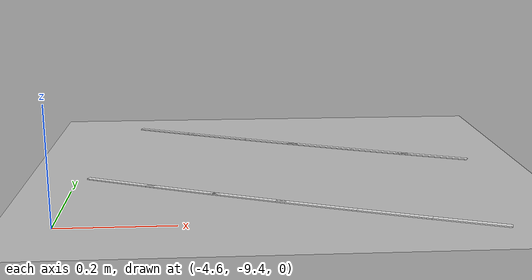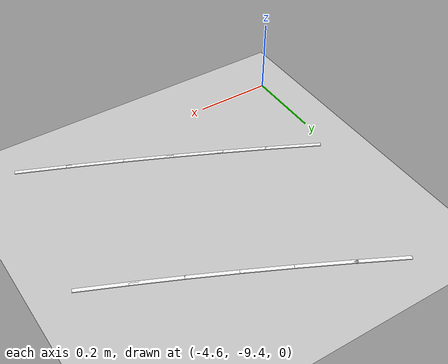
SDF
<sdf version="1.7">
 <world name="default">
  <model name="ground_plane">
   <static>1</static>
   <link name="link">
    <collision name="collision">
     <geometry><plane><normal>0 0 1</normal><size>100 100</size></plane></geometry>
     <surface>
      <contact><collide_bitmask>65535</collide_bitmask></contact>
      <friction><ode><mu>100</mu><mu2>50</mu2></ode></friction>
     </surface>
    </collision>
    <visual name="visual">
     <cast_shadows>0</cast_shadows>
     <geometry><plane><normal>0 0 1</normal><size>100 100</size></plane></geometry>
     <material>
      <script><uri>file://media/materials/scripts/gazebo.material</uri><name>Gazebo/Grey</name></script>
     </material>
    </visual>
   </link>
  </model>
  <model name="lane_line_left_337">
   <static>1</static>
   <link name="link">
    <pose>0 0 -0.004 0 -0 0</pose>
    <visual name="visual">
     <geometry><box><size>0.1457 0.01 0.01</size></box></geometry>
     <material><ambient>1 1 1 1</ambient><diffuse>1 1 1 1</diffuse></material>
    </visual>
    <collision name="collision"><geometry><box><size>0.1457 0.01 0.01</size></box></geometry></collision>
   </link>
   <pose>-4.44902 -8.73169 0 0 0 -0.471239</pose>
  </model>
  <model name="lane_line_left_338">
   <static>1</static>
   <link name="link">
    <pose>0 0 -0.004 0 -0 0</pose>
    <visual name="visual">
     <geometry><box><size>0.1457 0.01 0.01</size></box></geometry>
     <material><ambient>1 1 1 1</ambient><diffuse>1 1 1 1</diffuse></material>
    </visual>
    <collision name="collision"><geometry><box><size>0.1457 0.01 0.01</size></box></geometry></collision>
   </link>
   <pose>-4.33894 -8.78691 0 0 0 -0.458673</pose>
  </model>
  <model name="lane_line_right_338">
   <static>1</static>
   <link name="link">
    <pose>0 0 -0.004 0 -0 0</pose>
    <visual name="visual">
     <geometry><box><size>0.1457 0.01 0.01</size></box></geometry>
     <material><ambient>1 1 1 1</ambient><diffuse>1 1 1 1</diffuse></material>
    </visual>
    <collision name="collision"><geometry><box><size>0.1457 0.01 0.01</size></box></geometry></collision>
   </link>
   <pose>-4.51605 -9.14556 0 0 0 -0.458673</pose>
  </model>
  <model name="lane_line_left_339">
   <static>1</static>
   <link name="link">
    <pose>0 0 -0.004 0 -0 0</pose>
    <visual name="visual">
     <geometry><box><size>0.1457 0.01 0.01</size></box></geometry>
     <material><ambient>1 1 1 1</ambient><diffuse>1 1 1 1</diffuse></material>
    </visual>
    <collision name="collision"><geometry><box><size>0.1457 0.01 0.01</size></box></geometry></collision>
   </link>
   <pose>-4.22818 -8.84073 0 0 0 -0.446106</pose>
  </model>
  <model name="lane_line_right_339">
   <static>1</static>
   <link name="link">
    <pose>0 0 -0.004 0 -0 0</pose>
    <visual name="visual">
     <geometry><box><size>0.1457 0.01 0.01</size></box></geometry>
     <material><ambient>1 1 1 1</ambient><diffuse>1 1 1 1</diffuse></material>
    </visual>
    <collision name="collision"><geometry><box><size>0.1457 0.01 0.01</size></box></geometry></collision>
   </link>
   <pose>-4.40077 -9.20159 0 0 0 -0.446106</pose>
  </model>
  <model name="lane_line_left_340">
   <static>1</static>
   <link name="link">
    <pose>0 0 -0.004 0 -0 0</pose>
    <visual name="visual">
     <geometry><box><size>0.1457 0.01 0.01</size></box></geometry>
     <material><ambient>1 1 1 1</ambient><diffuse>1 1 1 1</diffuse></material>
    </visual>
    <collision name="collision"><geometry><box><size>0.1457 0.01 0.01</size></box></geometry></collision>
   </link>
   <pose>-4.11676 -8.89317 0 0 0 -0.43354</pose>
  </model>
  <model name="lane_line_right_340">
   <static>1</static>
   <link name="link">
    <pose>0 0 -0.004 0 -0 0</pose>
    <visual name="visual">
     <geometry><box><size>0.1457 0.01 0.01</size></box></geometry>
     <material><ambient>1 1 1 1</ambient><diffuse>1 1 1 1</diffuse></material>
    </visual>
    <collision name="collision"><geometry><box><size>0.1457 0.01 0.01</size></box></geometry></collision>
   </link>
   <pose>-4.28479 -9.25616 0 0 0 -0.43354</pose>
  </model>
  <model name="lane_line_left_341">
   <static>1</static>
   <link name="link">
    <pose>0 0 -0.004 0 -0 0</pose>
    <visual name="visual">
     <geometry><box><size>0.1457 0.01 0.01</size></box></geometry>
     <material><ambient>1 1 1 1</ambient><diffuse>1 1 1 1</diffuse></material>
    </visual>
    <collision name="collision"><geometry><box><size>0.1457 0.01 0.01</size></box></geometry></collision>
   </link>
   <pose>-4.00468 -8.9442 0 0 0 -0.420973</pose>
  </model>
  <model name="lane_line_right_341">
   <static>1</static>
   <link name="link">
    <pose>0 0 -0.004 0 -0 0</pose>
    <visual name="visual">
     <geometry><box><size>0.1457 0.01 0.01</size></box></geometry>
     <material><ambient>1 1 1 1</ambient><diffuse>1 1 1 1</diffuse></material>
    </visual>
    <collision name="collision"><geometry><box><size>0.1457 0.01 0.01</size></box></geometry></collision>
   </link>
   <pose>-4.16814 -9.30927 0 0 0 -0.420973</pose>
  </model>
  <model name="lane_line_left_342">
   <static>1</static>
   <link name="link">
    <pose>0 0 -0.004 0 -0 0</pose>
    <visual name="visual">
     <geometry><box><size>0.1457 0.01 0.01</size></box></geometry>
     <material><ambient>1 1 1 1</ambient><diffuse>1 1 1 1</diffuse></material>
    </visual>
    <collision name="collision"><geometry><box><size>0.1457 0.01 0.01</size></box></geometry></collision>
   </link>
   <pose>-3.89197 -8.99381 0 0 0 -0.408407</pose>
  </model>
  <model name="lane_line_right_342">
   <static>1</static>
   <link name="link">
    <pose>0 0 -0.004 0 -0 0</pose>
    <visual name="visual">
     <geometry><box><size>0.1457 0.01 0.01</size></box></geometry>
     <material><ambient>1 1 1 1</ambient><diffuse>1 1 1 1</diffuse></material>
    </visual>
    <collision name="collision"><geometry><box><size>0.1457 0.01 0.01</size></box></geometry></collision>
   </link>
   <pose>-4.05083 -9.36092 0 0 0 -0.408407</pose>
  </model>
  <model name="lane_line_right_343">
   <static>1</static>
   <link name="link">
    <pose>0 0 -0.004 0 -0 0</pose>
    <visual name="visual">
     <geometry><box><size>0.1457 0.01 0.01</size></box></geometry>
     <material><ambient>1 1 1 1</ambient><diffuse>1 1 1 1</diffuse></material>
    </visual>
    <collision name="collision"><geometry><box><size>0.1457 0.01 0.01</size></box></geometry></collision>
   </link>
   <pose>-3.93288 -9.41108 0 0 0 -0.395841</pose>
  </model>
 </world>
</sdf>
